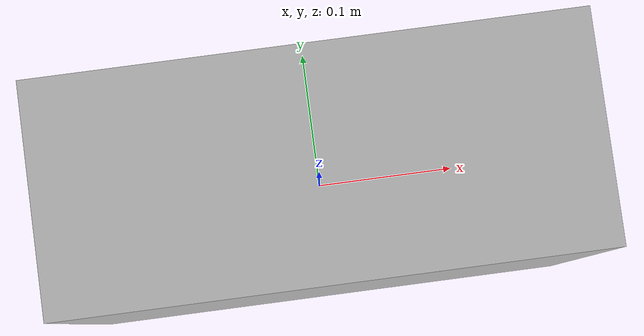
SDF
<?xml version="1.0" ?>
<sdf version="1.4">
  <model name="dove_soap">
  <!-- Give the base link a unique name -->
  <link name="base">

    <!-- Offset the base by half the lenght of the cylinder -->
    <inertial>
        <pose>0 0 0 0 0 0</pose>
        <mass>0.135</mass>
    </inertial>
    <collision name="base_collision">
      <geometry>
	<mesh>
		<uri>model://amazon_box/meshes/amazon_box.dae</uri>
	</mesh>
     </geometry>
    </collision>

    <!-- The visual is mostly a copy of the collision -->
    <visual name="base_visual">
      <geometry>
	<mesh>
		<uri>model://amazon_box/meshes/amazon_box.dae</uri>
	</mesh>
      </geometry>
    </visual>
  </link>
</model>
</sdf>
